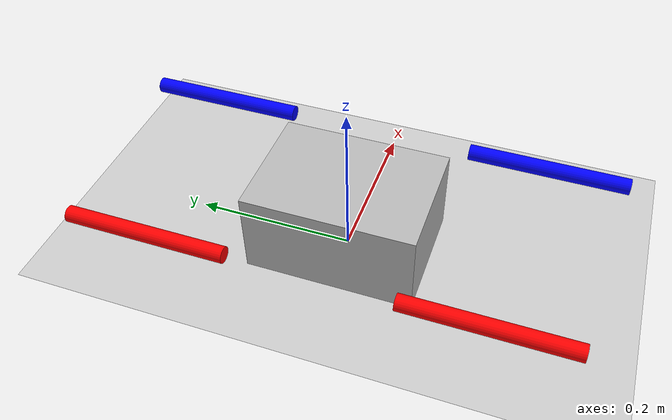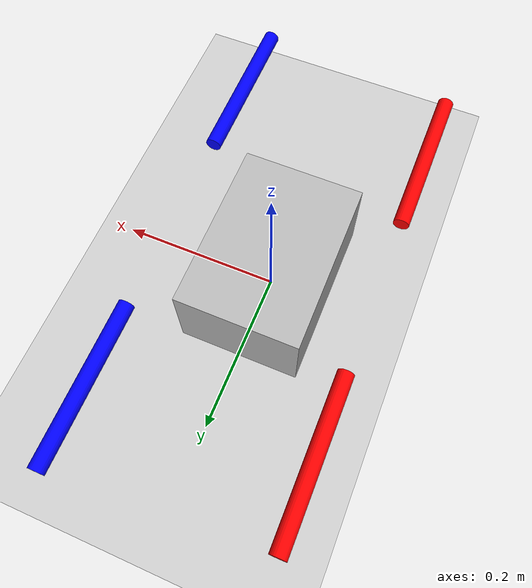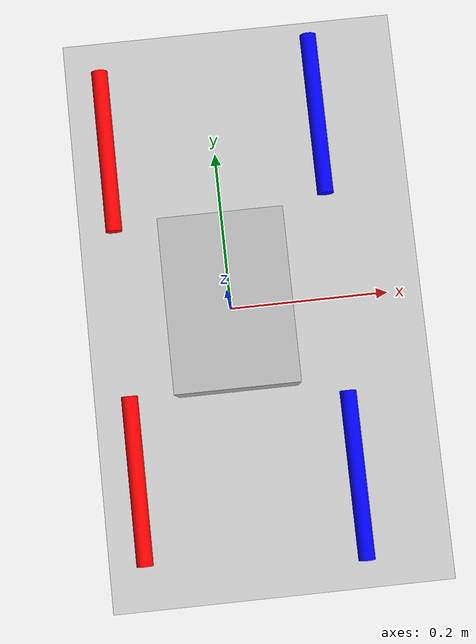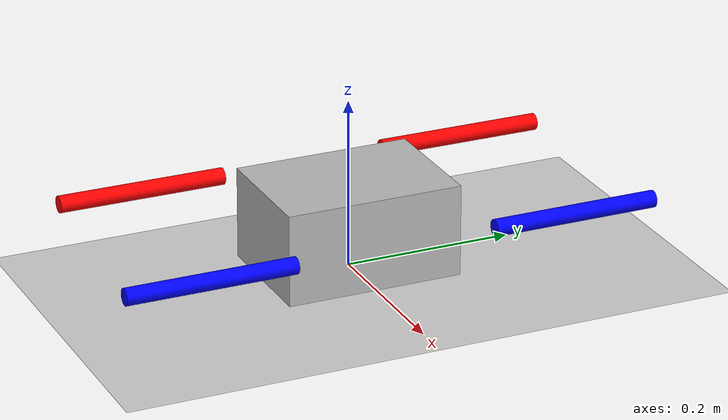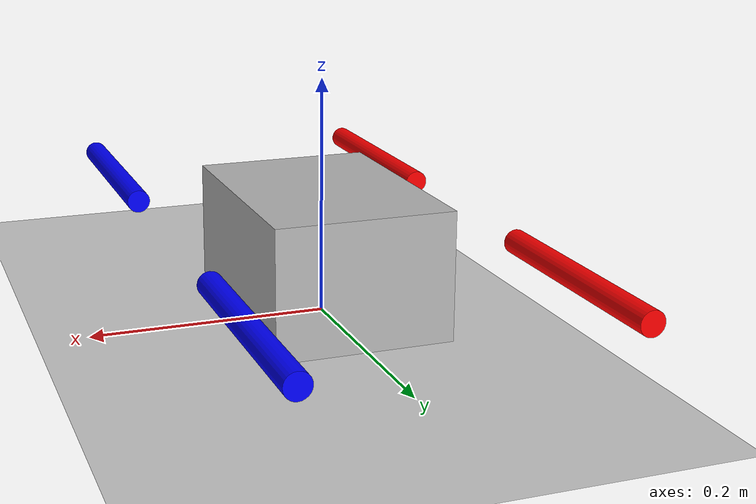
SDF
<?xml version="1.0" ?>
<sdf version="1.6">
  <world name="quadrotor">
    <plugin
      filename="gz-sim-apply-link-wrench-system"
      name="gz::sim::systems::ApplyLinkWrench">
    </plugin>

    <physics name="1ms" type="ode">
      <max_step_size>0.001</max_step_size>
      <real_time_factor>0</real_time_factor>
    </physics>
    <plugin
      filename="gz-sim-physics-system"
      name="gz::sim::systems::Physics">
    </plugin>

    <light type="directional" name="sun">
      <cast_shadows>true</cast_shadows>
      <pose>0 0 10 0 0 0</pose>
      <diffuse>1 1 1 1</diffuse>
      <specular>0.5 0.5 0.5 1</specular>
      <attenuation>
        <range>1000</range>
        <constant>0.9</constant>
        <linear>0.01</linear>
        <quadratic>0.001</quadratic>
      </attenuation>
      <direction>-0.5 0.1 -0.9</direction>
    </light>

    <model name="ground_plane">
      <static>true</static>
      <link name="link">
        <collision name="collision">
          <geometry>
            <plane>
              <normal>0 0 1</normal>
            </plane>
          </geometry>
        </collision>
        <visual name="visual">
          <geometry>
            <plane>
              <normal>0 0 1</normal>
              <size>100 100</size>
            </plane>
          </geometry>
          <material>
            <ambient>0.8 0.8 0.8 1</ambient>
            <diffuse>0.8 0.8 0.8 1</diffuse>
            <specular>0.8 0.8 0.8 1</specular>
          </material>
        </visual>
      </link>
    </model>

    <model name="X3">
      <pose>0 0 0.053302 0 0 0</pose>
      <link name="base_link">
        <inertial>
          <mass>1.5</mass>
          <inertia>
            <ixx>0.0347563</ixx>
            <ixy>0</ixy>
            <ixz>0</ixz>
            <iyy>0.07</iyy>
            <iyz>0</iyz>
            <izz>0.0977</izz>
          </inertia>
        </inertial>
        <collision name="base_link_inertia_collision">
          <geometry>
            <box>
              <size>0.30 0.42 0.11</size>
            </box>
          </geometry>
        </collision>
        <visual name="base_link_inertia_visual">
          <geometry>
            <box>
              <size>0.15 0.21 0.11</size>
            </box>
          </geometry>
        </visual>
      </link>
      <link name="rotor_0">
        <pose frame="">0.13 -0.22 0.023 0 -0 0</pose>
        <inertial>
          <mass>0.005</mass>
          <inertia>
            <ixx>9.75e-07</ixx>
            <ixy>0</ixy>
            <ixz>0</ixz>
            <iyy>4.17041e-05</iyy>
            <iyz>0</iyz>
            <izz>4.26041e-05</izz>
          </inertia>
        </inertial>
        <collision name="rotor_0_collision">
          <geometry>
            <cylinder>
              <length>0.005</length>
              <radius>0.1</radius>
            </cylinder>
          </geometry>
        </collision>
        <visual name="rotor_0_visual">
          <pose>0 0 0 1.57 0 0</pose>
          <geometry>
            <cylinder>
              <length>0.2</length>
              <radius>0.01</radius>
            </cylinder>
          </geometry>
          <material>
            <diffuse>0 0 1 1</diffuse>
          </material>
        </visual>
      </link>
      <joint name="rotor_0_joint" type="revolute">
        <child>rotor_0</child>
        <parent>base_link</parent>
        <axis>
          <xyz>0 0 1</xyz>
          <limit>
            <lower>-1e+16</lower>
            <upper>1e+16</upper>
          </limit>
        </axis>
      </joint>
      <link name="rotor_1">
        <pose>-0.13 0.2 0.023 0 -0 0</pose>
        <inertial>
          <mass>0.005</mass>
          <inertia>
            <ixx>9.75e-07</ixx>
            <ixy>0</ixy>
            <ixz>0</ixz>
            <iyy>4.17041e-05</iyy>
            <iyz>0</iyz>
            <izz>4.26041e-05</izz>
          </inertia>
        </inertial>
        <collision name="rotor_1_collision">
          <geometry>
            <cylinder>
              <length>0.005</length>
              <radius>0.1</radius>
            </cylinder>
          </geometry>
        </collision>
        <visual name="rotor_1_visual">
          <pose>0 0 0 1.57 0 0</pose>
          <geometry>
            <cylinder>
              <length>0.2</length>
              <radius>0.01</radius>
            </cylinder>
          </geometry>
          <material>
            <diffuse>1 0 0 1</diffuse>
          </material>
        </visual>
      </link>
      <joint name="rotor_1_joint" type="revolute">
        <child>rotor_1</child>
        <parent>base_link</parent>
        <axis>
          <xyz>0 0 1</xyz>
          <limit>
            <lower>-1e+16</lower>
            <upper>1e+16</upper>
          </limit>
        </axis>
      </joint>
      <link name="rotor_2">
        <pose>0.13 0.22 0.023 0 -0 0</pose>
        <inertial>
          <mass>0.005</mass>
          <inertia>
            <ixx>9.75e-07</ixx>
            <ixy>0</ixy>
            <ixz>0</ixz>
            <iyy>4.17041e-05</iyy>
            <iyz>0</iyz>
            <izz>4.26041e-05</izz>
          </inertia>
        </inertial>
        <collision name="rotor_2_collision">
          <geometry>
            <cylinder>
              <length>0.005</length>
              <radius>0.1</radius>
            </cylinder>
          </geometry>
        </collision>
        <visual name="rotor_2_visual">
          <pose>0 0 0 1.57 0 0</pose>
          <geometry>
            <cylinder>
              <length>0.2</length>
              <radius>0.01</radius>
            </cylinder>
          </geometry>
          <material>
            <diffuse>0 0 1 1</diffuse>
          </material>
        </visual>
      </link>
      <joint name="rotor_2_joint" type="revolute">
        <child>rotor_2</child>
        <parent>base_link</parent>
        <axis>
          <xyz>0 0 1</xyz>
          <limit>
            <lower>-1e+16</lower>
            <upper>1e+16</upper>
          </limit>
        </axis>
      </joint>
      <link name="rotor_3">
        <pose>-0.13 -0.2 0.023 0 -0 0</pose>
        <inertial>
          <mass>0.005</mass>
          <inertia>
            <ixx>9.75e-07</ixx>
            <ixy>0</ixy>
            <ixz>0</ixz>
            <iyy>4.17041e-05</iyy>
            <iyz>0</iyz>
            <izz>4.26041e-05</izz>
          </inertia>
        </inertial>
        <collision name="rotor_3_collision">
          <geometry>
            <cylinder>
              <length>0.005</length>
              <radius>0.1</radius>
            </cylinder>
          </geometry>
        </collision>
        <visual name="rotor_3_visual">
          <pose>0 0 0 1.57 0 0</pose>
          <geometry>
            <cylinder>
              <length>0.2</length>
              <radius>0.01</radius>
            </cylinder>
          </geometry>
          <material>
            <diffuse>1 0 0 1</diffuse>
          </material>
        </visual>
      </link>
      <joint name="rotor_3_joint" type="revolute">
        <child>rotor_3</child>
        <parent>base_link</parent>
        <axis>
          <xyz>0 0 1</xyz>
          <limit>
            <lower>-1e+16</lower>
            <upper>1e+16</upper>
          </limit>
        </axis>
      </joint>
      <plugin
        filename="gz-sim-multicopter-motor-model-system"
        name="gz::sim::systems::MulticopterMotorModel">
        <robotNamespace>X3</robotNamespace>
        <jointName>rotor_0_joint</jointName>
        <linkName>rotor_0</linkName>
        <turningDirection>ccw</turningDirection>
        <timeConstantUp>0.0125</timeConstantUp>
        <timeConstantDown>0.025</timeConstantDown>
        <maxRotVelocity>8000.0</maxRotVelocity>
        <motorConstant>8.54858e-06</motorConstant>
        <momentConstant>0.016</momentConstant>
        <commandSubTopic>gazebo/command/motor_speed</commandSubTopic>
        <actuator_number>0</actuator_number>
        <rotorDragCoefficient>8.06428e-05</rotorDragCoefficient>
        <rollingMomentCoefficient>1e-06</rollingMomentCoefficient>
        <motorSpeedPubTopic>motor_speed/0</motorSpeedPubTopic>
        <rotorVelocitySlowdownSim>1</rotorVelocitySlowdownSim>
        <motorType>velocity</motorType>
      </plugin>
      <plugin
        filename="gz-sim-multicopter-motor-model-system"
        name="gz::sim::systems::MulticopterMotorModel">
        <robotNamespace>X3</robotNamespace>
        <jointName>rotor_1_joint</jointName>
        <linkName>rotor_1</linkName>
        <turningDirection>ccw</turningDirection>
        <timeConstantUp>0.0125</timeConstantUp>
        <timeConstantDown>0.025</timeConstantDown>
        <maxRotVelocity>8000.0</maxRotVelocity>
        <motorConstant>8.54858e-06</motorConstant>
        <momentConstant>0.016</momentConstant>
        <commandSubTopic>gazebo/command/motor_speed</commandSubTopic>
        <actuator_number>1</actuator_number>
        <rotorDragCoefficient>8.06428e-05</rotorDragCoefficient>
        <rollingMomentCoefficient>1e-06</rollingMomentCoefficient>
        <motorSpeedPubTopic>motor_speed/1</motorSpeedPubTopic>
        <rotorVelocitySlowdownSim>1</rotorVelocitySlowdownSim>
        <motorType>velocity</motorType>
      </plugin>
      <plugin
        filename="gz-sim-multicopter-motor-model-system"
        name="gz::sim::systems::MulticopterMotorModel">
        <robotNamespace>X3</robotNamespace>
        <jointName>rotor_2_joint</jointName>
        <linkName>rotor_2</linkName>
        <turningDirection>cw</turningDirection>
        <timeConstantUp>0.0125</timeConstantUp>
        <timeConstantDown>0.025</timeConstantDown>
        <maxRotVelocity>8000.0</maxRotVelocity>
        <motorConstant>8.54858e-06</motorConstant>
        <momentConstant>0.016</momentConstant>
        <commandSubTopic>gazebo/command/motor_speed</commandSubTopic>
        <actuator_number>2</actuator_number>
        <rotorDragCoefficient>8.06428e-05</rotorDragCoefficient>
        <rollingMomentCoefficient>1e-06</rollingMomentCoefficient>
        <motorSpeedPubTopic>motor_speed/2</motorSpeedPubTopic>
        <rotorVelocitySlowdownSim>1</rotorVelocitySlowdownSim>
        <motorType>velocity</motorType>
      </plugin>
      <plugin
        filename="gz-sim-multicopter-motor-model-system"
        name="gz::sim::systems::MulticopterMotorModel">
        <robotNamespace>X3</robotNamespace>
        <jointName>rotor_3_joint</jointName>
        <linkName>rotor_3</linkName>
        <turningDirection>cw</turningDirection>
        <timeConstantUp>0.0125</timeConstantUp>
        <timeConstantDown>0.025</timeConstantDown>
        <maxRotVelocity>8000.0</maxRotVelocity>
        <motorConstant>8.54858e-06</motorConstant>
        <momentConstant>0.016</momentConstant>
        <commandSubTopic>gazebo/command/motor_speed</commandSubTopic>
        <actuator_number>3</actuator_number>
        <rotorDragCoefficient>8.06428e-05</rotorDragCoefficient>
        <rollingMomentCoefficient>1e-06</rollingMomentCoefficient>
        <motorSpeedPubTopic>motor_speed/3</motorSpeedPubTopic>
        <rotorVelocitySlowdownSim>1</rotorVelocitySlowdownSim>
        <motorType>velocity</motorType>
      </plugin>
      <plugin
        filename="gz-sim-multicopter-control-system"
        name="gz::sim::systems::MulticopterVelocityControl">
        <robotNamespace>X3</robotNamespace>
        <commandSubTopic>gazebo/command/twist</commandSubTopic>
        <enableSubTopic>enable</enableSubTopic>
        <comLinkName>base_link</comLinkName>
        <velocityGain>2.7 2.7 2.7</velocityGain>
        <attitudeGain>2 3 0.15</attitudeGain>
        <angularRateGain>0.4 0.52 0.18</angularRateGain>
        <maximumLinearAcceleration>2 2 2</maximumLinearAcceleration>

        <rotorConfiguration>
          <rotor>
            <jointName>rotor_0_joint</jointName>
            <forceConstant>8.54858e-06</forceConstant>
            <momentConstant>0.016</momentConstant>
            <direction>1</direction>
          </rotor>
          <rotor>
            <jointName>rotor_1_joint</jointName>
            <forceConstant>8.54858e-06</forceConstant>
            <momentConstant>0.016</momentConstant>
            <direction>1</direction>
          </rotor>
          <rotor>
            <jointName>rotor_2_joint</jointName>
            <forceConstant>8.54858e-06</forceConstant>
            <momentConstant>0.016</momentConstant>
            <direction>-1</direction>
          </rotor>
          <rotor>
            <jointName>rotor_3_joint</jointName>
            <forceConstant>8.54858e-06</forceConstant>
            <momentConstant>0.016</momentConstant>
            <direction>-1</direction>
          </rotor>
        </rotorConfiguration>
      </plugin>
      <plugin
        filename="gz-sim-odometry-publisher-system"
        name="gz::sim::systems::OdometryPublisher">
        <dimensions>3</dimensions>
      </plugin>
    </model>

  </world>
</sdf>
